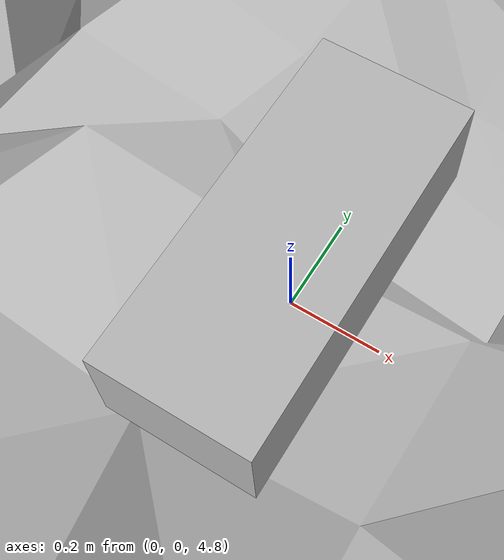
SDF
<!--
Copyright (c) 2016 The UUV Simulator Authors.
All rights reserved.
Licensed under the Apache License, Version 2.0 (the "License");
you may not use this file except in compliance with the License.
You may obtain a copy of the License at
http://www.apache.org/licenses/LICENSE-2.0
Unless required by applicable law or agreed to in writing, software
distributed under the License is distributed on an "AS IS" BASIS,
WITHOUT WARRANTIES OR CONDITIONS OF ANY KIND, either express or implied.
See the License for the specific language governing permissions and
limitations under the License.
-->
<?xml version="1.0" ?>
<sdf version="1.4">
  <world name="seabed">
    <physics name="default_physics" default="true" type="ode">
      <max_step_size>0.002</max_step_size>
      <real_time_factor>1</real_time_factor>
      <real_time_update_rate>500</real_time_update_rate>
    </physics>
    <scene>
      <ambient>0.01 0.01 0.01 1.0</ambient>
      <sky>
        <clouds>
          <speed>12</speed>
        </clouds>
      </sky>
      <shadows>1</shadows>
    </scene>

    <!-- Origin placed somewhere in the middle of the North Sea  -->
    <spherical_coordinates>
      <latitude_deg>56.71897669633431</latitude_deg>
      <longitude_deg>3.515625</longitude_deg>
    </spherical_coordinates>

    <!-- Global light source -->
    <light type="directional" name="sun1">
      <pose>50 0 150 0 0 0</pose>
      <diffuse>1 1 1 1</diffuse>
      <specular>.1 .1 .1 1</specular>
      <direction>0.3 0.3 -1</direction>
      <cast_shadows>false</cast_shadows>
    </light>

    <!-- Global light source -->
    <light type="directional" name="sun_diffuse">
      <pose>-50 0 -150 0 0 0</pose>
      <diffuse>0.6 0.6 0.6 1</diffuse>
      <specular>0 0 0 1</specular>
      <direction>-0.3 -0.3 -1</direction>
      <cast_shadows>false</cast_shadows>
    </light>

    <!-- Heightmap -->
    <include>
      <uri>model://sand_heightmap</uri>
      <pose>45 20 -20 0 0 0</pose>
    </include>

    <!-- Data rig-->
    <include>
      <uri>model://data_rig</uri>
      <pose>0 0 5 0 1.57 0</pose>
    </include>

    <gui fullscreen='0'>
      <camera name='user_camera'>
        <pose frame=''>0 0 40 0 1.57 0</pose>
        <view_controller>orbit</view_controller>
        <projection_type>perspective</projection_type>
      </camera>
    </gui>
  </world>
</sdf>

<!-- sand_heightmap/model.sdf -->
<sdf version="1.5">
  <model name="sand_heightmap">
    <static>true</static>
    <link name="link">
      <collision name="ground">
        <pose>0 0 0 0 0 0</pose>
        <geometry>
          <mesh><uri>model://sand_heightmap/meshes/heightmap.dae</uri></mesh>
        </geometry>
      </collision>

      <visual name="ground_sand">
        <cast_shadows>true</cast_shadows>
        <pose>0 0 0 0 0 0</pose>
        <geometry>
          <mesh><uri>model://sand_heightmap/meshes/heightmap.dae</uri></mesh>
        </geometry>
        <material>
          <script>
            <uri>file://sand_heightmap/meshes/sand.material</uri>
            <name>UUVSimulator/SandAndStones</name>
          </script>
          <emissive>
            0.6 0.6 0.6 1.0
          </emissive>
        </material>
      </visual>
    </link>
  </model>
</sdf>

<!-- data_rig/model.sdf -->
<sdf version="1.5">
  <model name="data_rig">
    <pose>0 0 0 0 0 0</pose>
    <link name="data_rig_link">
      <gravity>0</gravity>
      <inertial>
        <mass>1</mass>
      </inertial>
      <collision name="collision">
        <geometry>
          <box>
            <size>0.023000 0.076000 0.032000</size>
          </box>
        </geometry>
      </collision>
      <visual name="visual">
        <geometry>
          <box>
            <size>0.23000 0.76000 0.32000</size>
          </box>
        </geometry>
      </visual>

      <!-- Stereo Camera -->
      <sensor type="multicamera" name="stereo_camera">
        <update_rate>30.0</update_rate>
        <camera name="left">
          <horizontal_fov>1.570796</horizontal_fov>
          <image>
            <width>640</width>
            <height>480</height>
            <format>R8G8B8</format>
          </image>
          <clip>
            <near>0.02</near>
            <far>300</far>
          </clip>
          <noise>
            <type>gaussian</type>
            <mean>0.0</mean>
            <stddev>0.007</stddev>
          </noise>
        </camera>
        <camera name="right">
          <pose>0 -0.2 0 0 0 0</pose>
          <horizontal_fov>1.570796</horizontal_fov>
          <image>
            <width>640</width>
            <height>480</height>
            <format>R8G8B8</format>
          </image>
          <clip>
            <near>0.02</near>
            <far>300</far>
          </clip>
          <noise>
            <type>gaussian</type>
            <mean>0.0</mean>
            <stddev>0.007</stddev>
          </noise>
        </camera>
        <plugin name="stereo_camera_controller" filename="libgazebo_ros_multicamera.so">
          <alwaysOn>true</alwaysOn>
          <updateRate>0.0</updateRate>
          <cameraName>stereo_camera</cameraName>
          <imageTopicName>image_raw</imageTopicName>
          <cameraInfoTopicName>camera_info</cameraInfoTopicName>
          <frameName>left_camera_optical_frame</frameName>
          <hackBaseline>0.2</hackBaseline>
          <distortionK1>0.0</distortionK1>
          <distortionK2>0.0</distortionK2>
          <distortionK3>0.0</distortionK3>
          <distortionT1>0.0</distortionT1>
          <distortionT2>0.0</distortionT2>
        </plugin>
      </sensor>

      <!-- IMU -->
      <sensor name="imu_sensor" type="imu">
        <always_on>true</always_on>
        <update_rate>200</update_rate>
        <visualize>true</visualize>
        <imu>
            <angular_velocity>
                <x>
                    <noise type="gaussian">
                        <mean>0.0</mean>
                        <stddev>2e-4</stddev>
                        <bias_mean>0.0</bias_mean>
                        <bias_stddev>0.0000008</bias_stddev>
                    </noise>
                </x>
                <y>
                    <noise type="gaussian">
                        <mean>0.0</mean>
                        <stddev>2e-4</stddev>
                        <bias_mean>0.0</bias_mean>
                        <bias_stddev>0.0000008</bias_stddev>
                    </noise>
                </y>
                <z>
                    <noise type="gaussian">
                        <mean>0.0</mean>
                        <stddev>2e-4</stddev>
                        <bias_mean>0.0</bias_mean>
                        <bias_stddev>0.0000008</bias_stddev>
                    </noise>
                </z>
            </angular_velocity>
            <linear_acceleration>
                <x>
                    <noise type="gaussian">
                        <mean>0.0</mean>
                        <stddev>1.7e-2</stddev>
                        <bias_mean>0.0</bias_mean>
                        <bias_stddev>0.001</bias_stddev>
                    </noise>
                </x>
                <y>
                    <noise type="gaussian">
                        <mean>0.0</mean>
                        <stddev>1.7e-2</stddev>
                        <bias_mean>0.0</bias_mean>
                        <bias_stddev>0.001</bias_stddev>
                    </noise>
                </y>
                <z>
                    <noise type="gaussian">
                        <mean>0.0</mean>
                        <stddev>1.7e-2</stddev>
                        <bias_mean>0.0</bias_mean>
                        <bias_stddev>0.001</bias_stddev>
                    </noise>
                </z>
            </linear_acceleration>
        </imu>
        <topic>imu</topic>
        <plugin filename="libgazebo_ros_imu_sensor.so" name="imu_plugin">
          <robotNamespace>/</robotNamespace>
          <gaussianNoise>0.0</gaussianNoise>
          <xyzOffset>0 0 0</xyzOffset>
          <rpyOffset>0 0 0</rpyOffset>
          <topicName>imu</topicName>
          <bodyName>imu_link</bodyName>
          <updateRateHZ>200</updateRateHZ>
          <frameName>imu_link</frameName>
          <initialOrientationAsReference>false</initialOrientationAsReference>
        </plugin>
        <pose>0 0 0 0 0 0</pose>
      </sensor>
    </link>
  </model>
</sdf>
